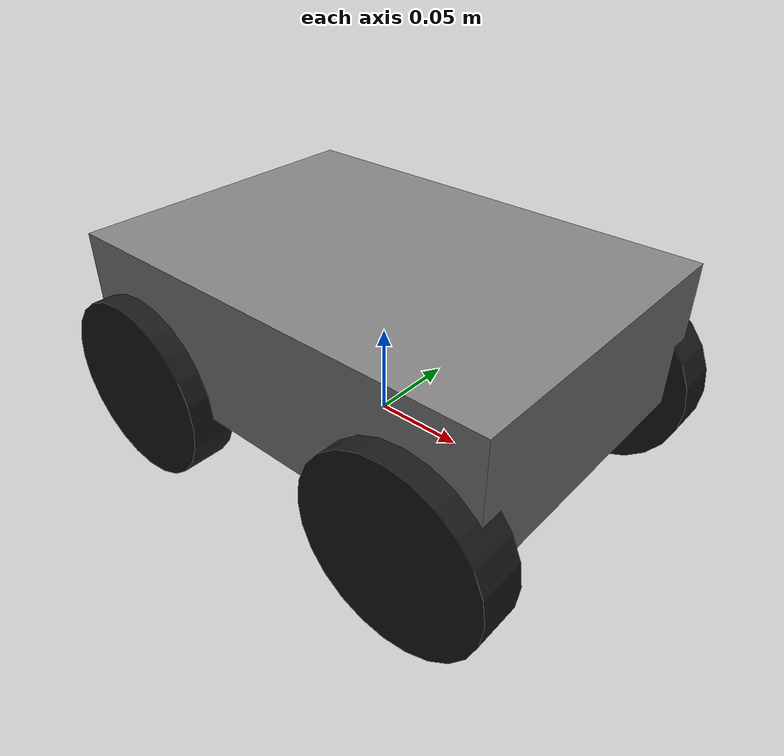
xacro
<?xml version="1.0"?>
<robot name="mecanum_robot" xmlns:xacro="http://www.ros.org/wiki/xacro">

  <xacro:include filename="$(find mecanum_description)/urdf/ros2_control.xacro"/>
  <xacro:include filename="$(find mecanum_description)/urdf/sensors.xacro"/>

  <xacro:property name="body_x"      value="0.254"/>
  <xacro:property name="body_y"      value="0.178"/>
  <xacro:property name="body_z"      value="0.076"/>
  <xacro:property name="wheel_r"     value="0.051"/>
  <xacro:property name="wheel_w"     value="0.025"/>
  <xacro:property name="wheel_xoff"  value="0.089"/>  <!-- front/rear from centre -->
  <xacro:property name="wheel_yoff"  value="0.089"/>  <!-- left/right from centre -->
  <xacro:property name="body_clearance" value="0.010"/> <!-- ground clearance -->

  <!-- base_footprint — ground projection used by Nav2 -->
  <link name="base_footprint"/>
  <joint name="base_footprint_joint" type="fixed">
    <parent link="base_footprint"/>
    <child  link="base_link"/>
    <origin xyz="0 0 ${wheel_r + body_clearance}" rpy="0 0 0"/>
  </joint>

  <!-- base_link — main body -->
  <link name="base_link">
    <visual>
      <geometry><box size="${body_x} ${body_y} ${body_z}"/></geometry>
      <material name="grey"><color rgba="0.5 0.5 0.5 1"/></material>
    </visual>
    <collision>
      <geometry><box size="${body_x} ${body_y} ${body_z}"/></geometry>
    </collision>
    <inertial>
      <mass value="3.0"/>
      <!-- I = m/12 * (y²+z²), (x²+z²), (x²+y²) -->
      <inertia
        ixx="${3.0/12.0 * (body_y*body_y + body_z*body_z)}"
        iyy="${3.0/12.0 * (body_x*body_x + body_z*body_z)}"
        izz="${3.0/12.0 * (body_x*body_x + body_y*body_y)}"
        ixy="0" ixz="0" iyz="0"/>
    </inertial>
  </link>

  <!-- ── Mecanum wheel macro ───────────────────────────────────────────── -->
  <xacro:macro name="mecanum_wheel" params="name x y">
    <link name="${name}_link">
      <visual>
        <origin rpy="1.5708 0 0"/>
        <geometry><cylinder length="${wheel_w}" radius="${wheel_r}"/></geometry>
        <material name="black"><color rgba="0.1 0.1 0.1 1"/></material>
      </visual>
      <collision>
        <origin rpy="1.5708 0 0"/>
        <geometry><cylinder length="${wheel_w}" radius="${wheel_r}"/></geometry>
      </collision>
      <inertial>
        <mass value="0.3"/>
        <!-- solid cylinder: Ixx=Iyy=m/12*(3r²+h²), Izz=mr²/2 -->
        <inertia
          ixx="${0.3/12.0 * (3*wheel_r*wheel_r + wheel_w*wheel_w)}"
          iyy="${0.3/12.0 * (3*wheel_r*wheel_r + wheel_w*wheel_w)}"
          izz="${0.3/2.0  * wheel_r*wheel_r}"
          ixy="0" ixz="0" iyz="0"/>
      </inertial>
    </link>
    <joint name="${name}_joint" type="continuous">
      <parent link="base_link"/>
      <child  link="${name}_link"/>
      <origin xyz="${x} ${y} ${-body_z/2}" rpy="0 0 0"/>
      <axis xyz="0 1 0"/>
      <dynamics damping="0.01" friction="0.1"/>
    </joint>
  </xacro:macro>

  <!-- FL=front-left, FR=front-right, RL=rear-left, RR=rear-right -->
  <xacro:mecanum_wheel name="front_left_wheel"  x=" ${wheel_xoff}" y=" ${wheel_yoff}"/>
  <xacro:mecanum_wheel name="front_right_wheel" x=" ${wheel_xoff}" y="-${wheel_yoff}"/>
  <xacro:mecanum_wheel name="rear_left_wheel"   x="-${wheel_xoff}" y=" ${wheel_yoff}"/>
  <xacro:mecanum_wheel name="rear_right_wheel"  x="-${wheel_xoff}" y="-${wheel_yoff}"/>

</robot>

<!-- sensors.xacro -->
<robot xmlns:xacro="http://www.ros.org/wiki/xacro">

  <!-- ── IMU ─────────────────────────────────────────────────────────── -->
  <link name="imu_link"/>
  <joint name="imu_joint" type="fixed">
    <parent link="base_link"/>
    <child  link="imu_link"/>
    <origin xyz="0 0 0.038" rpy="0 0 0"/>  <!-- top of body -->
  </joint>

  <!-- ── Forward camera ───────────────────────────────────────────────── -->
  <link name="camera_forward_link"/>
  <joint name="camera_forward_joint" type="fixed">
    <parent link="base_link"/>
    <child  link="camera_forward_link"/>
    <origin xyz="0.127 0 0.038" rpy="0 0 0"/>  <!-- front face centre -->
  </joint>

  <!-- ── ToF sensor 0 — rear LEFT (keypad left) ───────────────────────── -->
  <link name="tof_0_link"/>
  <joint name="tof_0_joint" type="fixed">
    <parent link="base_link"/>
    <child  link="tof_0_link"/>
    <origin xyz="-0.127 0.040 0" rpy="0 0 3.1416"/>  <!-- facing rear -->
  </joint>

  <!-- ── ToF sensor 1 — rear RIGHT (keypad right) ─────────────────────── -->
  <link name="tof_1_link"/>
  <joint name="tof_1_joint" type="fixed">
    <parent link="base_link"/>
    <child  link="tof_1_link"/>
    <origin xyz="-0.127 -0.040 0" rpy="0 0 3.1416"/>  <!-- facing rear -->
  </joint>

  <!-- ── ToF sensor 2 — RIGHT SIDE (antenna_2 strafe + crank) ─────────── -->
  <link name="tof_2_link"/>
  <joint name="tof_2_joint" type="fixed">
    <parent link="base_link"/>
    <child  link="tof_2_link"/>
    <origin xyz="0 -0.089 0" rpy="0 0 -1.5708"/>  <!-- facing right -->
  </joint>

  <!-- ── Ultrasonic FL — front-left ───────────────────────────────────── -->
  <link name="ultrasonic_fl_link"/>
  <joint name="ultrasonic_fl_joint" type="fixed">
    <parent link="base_link"/>
    <child  link="ultrasonic_fl_link"/>
    <origin xyz="0.127 0.070 0.010" rpy="0 0 0"/>  <!-- facing front -->
  </joint>

  <!-- ── Ultrasonic FR — front-right ──────────────────────────────────── -->
  <link name="ultrasonic_fr_link"/>
  <joint name="ultrasonic_fr_joint" type="fixed">
    <parent link="base_link"/>
    <child  link="ultrasonic_fr_link"/>
    <origin xyz="0.127 -0.070 0.010" rpy="0 0 0"/>  <!-- facing front -->
  </joint>

  <!-- ── Ultrasonic RL — rear-left ─────────────────────────────────────── -->
  <link name="ultrasonic_rl_link"/>
  <joint name="ultrasonic_rl_joint" type="fixed">
    <parent link="base_link"/>
    <child  link="ultrasonic_rl_link"/>
    <origin xyz="-0.127 0.070 0.010" rpy="0 0 3.1416"/>  <!-- facing rear -->
  </joint>

  <!-- ── Ultrasonic RR — rear-right ────────────────────────────────────── -->
  <link name="ultrasonic_rr_link"/>
  <joint name="ultrasonic_rr_joint" type="fixed">
    <parent link="base_link"/>
    <child  link="ultrasonic_rr_link"/>
    <origin xyz="-0.127 -0.070 0.010" rpy="0 0 3.1416"/>  <!-- facing rear -->
  </joint>

  <!-- ── Optical flow — bottom centre ─────────────────────────────────── -->
  <link name="optical_flow_link"/>
  <joint name="optical_flow_joint" type="fixed">
    <parent link="base_link"/>
    <child  link="optical_flow_link"/>
    <origin xyz="0 0 -0.038" rpy="0 3.1416 0"/>  <!-- facing down -->
  </joint>

  <!-- ── TCRT5000 line tracker — front-centre bottom (on Arduino) ──────── -->
  <link name="line_tracker_link"/>
  <joint name="line_tracker_joint" type="fixed">
    <parent link="base_link"/>
    <child  link="line_tracker_link"/>
    <origin xyz="0.080 0 -0.038" rpy="0 3.1416 0"/>  <!-- facing down, front biased -->
  </joint>

</robot>
